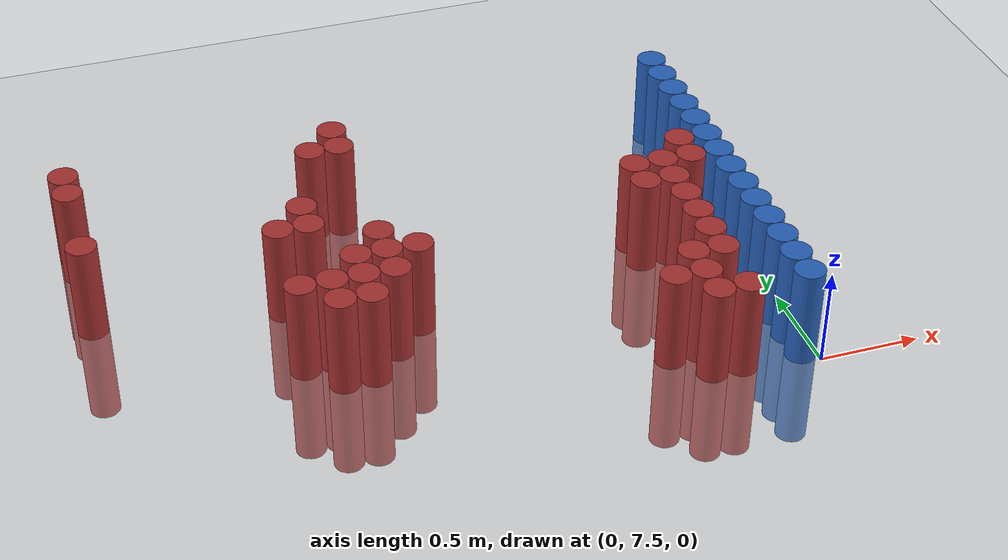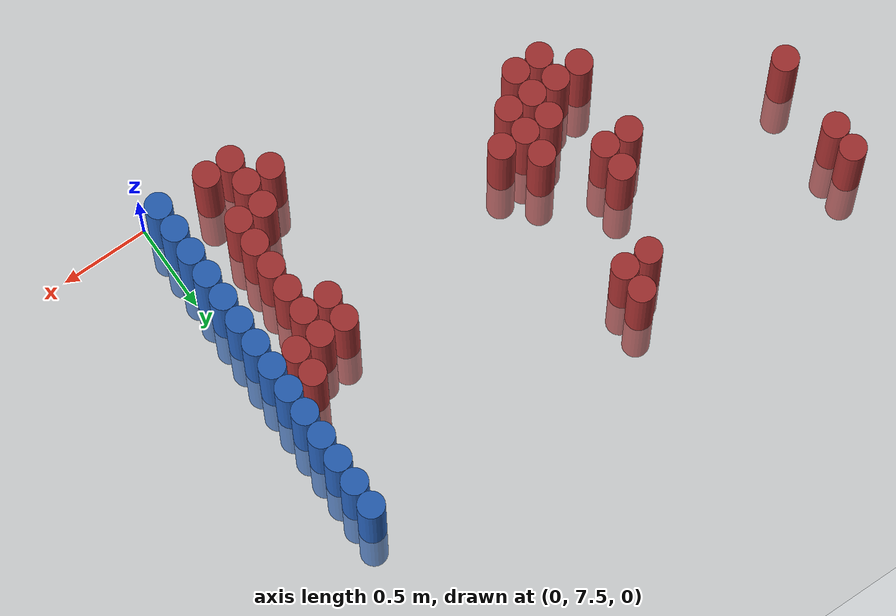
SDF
<sdf version="1.6">
 <world name="default">
  <model name="ground_plane">
   <static>1</static>
   <link name="link">
    <collision name="collision">
     <geometry><plane><normal>0 0 1</normal><size>100 100</size></plane></geometry>
     <surface><friction><ode><mu>100</mu><mu2>50</mu2></ode></friction></surface>
    </collision>
    <visual name="visual">
     <cast_shadows>0</cast_shadows>
     <geometry><plane><normal>0 0 1</normal><size>100 100</size></plane></geometry>
     <material>
      <script><uri>file://media/materials/scripts/gazebo.material</uri><name>Gazebo/Grey</name></script>
     </material>
    </visual>
   </link>
  </model>
  <model name="unit_cylinder_155">
   <static>1</static>
   <pose>-3.225000 8.775000 0.000000 0.000000 0.000000 0.000000</pose>
   <link name="link">
    <inertial>
     <mass>1</mass>
     <inertia><ixx>0.145833</ixx><ixy>0</ixy><ixz>0</ixz><iyy>0.145833</iyy><iyz>0</iyz><izz>0.125</izz></inertia>
    </inertial>
    <collision name="collision">
     <geometry><cylinder><radius>0.075000</radius><length>1</length></cylinder></geometry>
    </collision>
    <visual name="visual">
     <geometry><cylinder><radius>0.075000</radius><length>1</length></cylinder></geometry>
     <material>
      <ambient>0.648000 0.192000 0.192000 1</ambient>
      <diffuse>0.648000 0.192000 0.192000 1</diffuse>
     </material>
     <material>
      <script><name>Gazebo/Grey</name><uri>file://media/materials/scripts/gazebo.material</uri></script>
     </material>
    </visual>
   </link>
  </model>
  <model name="unit_cylinder_156">
   <static>1</static>
   <pose>-3.225000 9.225000 0.000000 0.000000 0.000000 0.000000</pose>
   <link name="link">
    <inertial>
     <mass>1</mass>
     <inertia><ixx>0.145833</ixx><ixy>0</ixy><ixz>0</ixz><iyy>0.145833</iyy><iyz>0</iyz><izz>0.125</izz></inertia>
    </inertial>
    <collision name="collision">
     <geometry><cylinder><radius>0.075000</radius><length>1</length></cylinder></geometry>
    </collision>
    <visual name="visual">
     <geometry><cylinder><radius>0.075000</radius><length>1</length></cylinder></geometry>
     <material>
      <ambient>0.648000 0.192000 0.192000 1</ambient>
      <diffuse>0.648000 0.192000 0.192000 1</diffuse>
     </material>
     <material>
      <script><name>Gazebo/Grey</name><uri>file://media/materials/scripts/gazebo.material</uri></script>
     </material>
    </visual>
   </link>
  </model>
  <model name="unit_cylinder_157">
   <static>1</static>
   <pose>-3.225000 9.375000 0.000000 0.000000 0.000000 0.000000</pose>
   <link name="link">
    <inertial>
     <mass>1</mass>
     <inertia><ixx>0.145833</ixx><ixy>0</ixy><ixz>0</ixz><iyy>0.145833</iyy><iyz>0</iyz><izz>0.125</izz></inertia>
    </inertial>
    <collision name="collision">
     <geometry><cylinder><radius>0.075000</radius><length>1</length></cylinder></geometry>
    </collision>
    <visual name="visual">
     <geometry><cylinder><radius>0.075000</radius><length>1</length></cylinder></geometry>
     <material>
      <ambient>0.648000 0.192000 0.192000 1</ambient>
      <diffuse>0.648000 0.192000 0.192000 1</diffuse>
     </material>
     <material>
      <script><name>Gazebo/Grey</name><uri>file://media/materials/scripts/gazebo.material</uri></script>
     </material>
    </visual>
   </link>
  </model>
  <model name="unit_cylinder_181">
   <static>1</static>
   <pose>-2.325000 8.175000 0.000000 0.000000 0.000000 0.000000</pose>
   <link name="link">
    <inertial>
     <mass>1</mass>
     <inertia><ixx>0.145833</ixx><ixy>0</ixy><ixz>0</ixz><iyy>0.145833</iyy><iyz>0</iyz><izz>0.125</izz></inertia>
    </inertial>
    <collision name="collision">
     <geometry><cylinder><radius>0.075000</radius><length>1</length></cylinder></geometry>
    </collision>
    <visual name="visual">
     <geometry><cylinder><radius>0.075000</radius><length>1</length></cylinder></geometry>
     <material>
      <ambient>0.648000 0.192000 0.192000 1</ambient>
      <diffuse>0.648000 0.192000 0.192000 1</diffuse>
     </material>
     <material>
      <script><name>Gazebo/Grey</name><uri>file://media/materials/scripts/gazebo.material</uri></script>
     </material>
    </visual>
   </link>
  </model>
  <model name="unit_cylinder_182">
   <static>1</static>
   <pose>-2.325000 8.625000 0.000000 0.000000 0.000000 0.000000</pose>
   <link name="link">
    <inertial>
     <mass>1</mass>
     <inertia><ixx>0.145833</ixx><ixy>0</ixy><ixz>0</ixz><iyy>0.145833</iyy><iyz>0</iyz><izz>0.125</izz></inertia>
    </inertial>
    <collision name="collision">
     <geometry><cylinder><radius>0.075000</radius><length>1</length></cylinder></geometry>
    </collision>
    <visual name="visual">
     <geometry><cylinder><radius>0.075000</radius><length>1</length></cylinder></geometry>
     <material>
      <ambient>0.648000 0.192000 0.192000 1</ambient>
      <diffuse>0.648000 0.192000 0.192000 1</diffuse>
     </material>
     <material>
      <script><name>Gazebo/Grey</name><uri>file://media/materials/scripts/gazebo.material</uri></script>
     </material>
    </visual>
   </link>
  </model>
  <model name="unit_cylinder_185">
   <static>1</static>
   <pose>-2.175000 8.025000 0.000000 0.000000 0.000000 0.000000</pose>
   <link name="link">
    <inertial>
     <mass>1</mass>
     <inertia><ixx>0.145833</ixx><ixy>0</ixy><ixz>0</ixz><iyy>0.145833</iyy><iyz>0</iyz><izz>0.125</izz></inertia>
    </inertial>
    <collision name="collision">
     <geometry><cylinder><radius>0.075000</radius><length>1</length></cylinder></geometry>
    </collision>
    <visual name="visual">
     <geometry><cylinder><radius>0.075000</radius><length>1</length></cylinder></geometry>
     <material>
      <ambient>0.648000 0.192000 0.192000 1</ambient>
      <diffuse>0.648000 0.192000 0.192000 1</diffuse>
     </material>
     <material>
      <script><name>Gazebo/Grey</name><uri>file://media/materials/scripts/gazebo.material</uri></script>
     </material>
    </visual>
   </link>
  </model>
  <model name="unit_cylinder_186">
   <static>1</static>
   <pose>-2.175000 8.175000 0.000000 0.000000 0.000000 0.000000</pose>
   <link name="link">
    <inertial>
     <mass>1</mass>
     <inertia><ixx>0.145833</ixx><ixy>0</ixy><ixz>0</ixz><iyy>0.145833</iyy><iyz>0</iyz><izz>0.125</izz></inertia>
    </inertial>
    <collision name="collision">
     <geometry><cylinder><radius>0.075000</radius><length>1</length></cylinder></geometry>
    </collision>
    <visual name="visual">
     <geometry><cylinder><radius>0.075000</radius><length>1</length></cylinder></geometry>
     <material>
      <ambient>0.648000 0.192000 0.192000 1</ambient>
      <diffuse>0.648000 0.192000 0.192000 1</diffuse>
     </material>
     <material>
      <script><name>Gazebo/Grey</name><uri>file://media/materials/scripts/gazebo.material</uri></script>
     </material>
    </visual>
   </link>
  </model>
  <model name="unit_cylinder_187">
   <static>1</static>
   <pose>-2.175000 8.625000 0.000000 0.000000 0.000000 0.000000</pose>
   <link name="link">
    <inertial>
     <mass>1</mass>
     <inertia><ixx>0.145833</ixx><ixy>0</ixy><ixz>0</ixz><iyy>0.145833</iyy><iyz>0</iyz><izz>0.125</izz></inertia>
    </inertial>
    <collision name="collision">
     <geometry><cylinder><radius>0.075000</radius><length>1</length></cylinder></geometry>
    </collision>
    <visual name="visual">
     <geometry><cylinder><radius>0.075000</radius><length>1</length></cylinder></geometry>
     <material>
      <ambient>0.648000 0.192000 0.192000 1</ambient>
      <diffuse>0.648000 0.192000 0.192000 1</diffuse>
     </material>
     <material>
      <script><name>Gazebo/Grey</name><uri>file://media/materials/scripts/gazebo.material</uri></script>
     </material>
    </visual>
   </link>
  </model>
  <model name="unit_cylinder_188">
   <static>1</static>
   <pose>-2.175000 8.775000 0.000000 0.000000 0.000000 0.000000</pose>
   <link name="link">
    <inertial>
     <mass>1</mass>
     <inertia><ixx>0.145833</ixx><ixy>0</ixy><ixz>0</ixz><iyy>0.145833</iyy><iyz>0</iyz><izz>0.125</izz></inertia>
    </inertial>
    <collision name="collision">
     <geometry><cylinder><radius>0.075000</radius><length>1</length></cylinder></geometry>
    </collision>
    <visual name="visual">
     <geometry><cylinder><radius>0.075000</radius><length>1</length></cylinder></geometry>
     <material>
      <ambient>0.648000 0.192000 0.192000 1</ambient>
      <diffuse>0.648000 0.192000 0.192000 1</diffuse>
     </material>
     <material>
      <script><name>Gazebo/Grey</name><uri>file://media/materials/scripts/gazebo.material</uri></script>
     </material>
    </visual>
   </link>
  </model>
  <model name="unit_cylinder_189">
   <static>1</static>
   <pose>-2.025000 8.025000 0.000000 0.000000 0.000000 0.000000</pose>
   <link name="link">
    <inertial>
     <mass>1</mass>
     <inertia><ixx>0.145833</ixx><ixy>0</ixy><ixz>0</ixz><iyy>0.145833</iyy><iyz>0</iyz><izz>0.125</izz></inertia>
    </inertial>
    <collision name="collision">
     <geometry><cylinder><radius>0.075000</radius><length>1</length></cylinder></geometry>
    </collision>
    <visual name="visual">
     <geometry><cylinder><radius>0.075000</radius><length>1</length></cylinder></geometry>
     <material>
      <ambient>0.648000 0.192000 0.192000 1</ambient>
      <diffuse>0.648000 0.192000 0.192000 1</diffuse>
     </material>
     <material>
      <script><name>Gazebo/Grey</name><uri>file://media/materials/scripts/gazebo.material</uri></script>
     </material>
    </visual>
   </link>
  </model>
  <model name="unit_cylinder_190">
   <static>1</static>
   <pose>-2.025000 8.175000 0.000000 0.000000 0.000000 0.000000</pose>
   <link name="link">
    <inertial>
     <mass>1</mass>
     <inertia><ixx>0.145833</ixx><ixy>0</ixy><ixz>0</ixz><iyy>0.145833</iyy><iyz>0</iyz><izz>0.125</izz></inertia>
    </inertial>
    <collision name="collision">
     <geometry><cylinder><radius>0.075000</radius><length>1</length></cylinder></geometry>
    </collision>
    <visual name="visual">
     <geometry><cylinder><radius>0.075000</radius><length>1</length></cylinder></geometry>
     <material>
      <ambient>0.648000 0.192000 0.192000 1</ambient>
      <diffuse>0.648000 0.192000 0.192000 1</diffuse>
     </material>
     <material>
      <script><name>Gazebo/Grey</name><uri>file://media/materials/scripts/gazebo.material</uri></script>
     </material>
    </visual>
   </link>
  </model>
  <model name="unit_cylinder_191">
   <static>1</static>
   <pose>-2.025000 8.325000 0.000000 0.000000 0.000000 0.000000</pose>
   <link name="link">
    <inertial>
     <mass>1</mass>
     <inertia><ixx>0.145833</ixx><ixy>0</ixy><ixz>0</ixz><iyy>0.145833</iyy><iyz>0</iyz><izz>0.125</izz></inertia>
    </inertial>
    <collision name="collision">
     <geometry><cylinder><radius>0.075000</radius><length>1</length></cylinder></geometry>
    </collision>
    <visual name="visual">
     <geometry><cylinder><radius>0.075000</radius><length>1</length></cylinder></geometry>
     <material>
      <ambient>0.648000 0.192000 0.192000 1</ambient>
      <diffuse>0.648000 0.192000 0.192000 1</diffuse>
     </material>
     <material>
      <script><name>Gazebo/Grey</name><uri>file://media/materials/scripts/gazebo.material</uri></script>
     </material>
    </visual>
   </link>
  </model>
  <model name="unit_cylinder_192">
   <static>1</static>
   <pose>-2.025000 9.225000 0.000000 0.000000 0.000000 0.000000</pose>
   <link name="link">
    <inertial>
     <mass>1</mass>
     <inertia><ixx>0.145833</ixx><ixy>0</ixy><ixz>0</ixz><iyy>0.145833</iyy><iyz>0</iyz><izz>0.125</izz></inertia>
    </inertial>
    <collision name="collision">
     <geometry><cylinder><radius>0.075000</radius><length>1</length></cylinder></geometry>
    </collision>
    <visual name="visual">
     <geometry><cylinder><radius>0.075000</radius><length>1</length></cylinder></geometry>
     <material>
      <ambient>0.648000 0.192000 0.192000 1</ambient>
      <diffuse>0.648000 0.192000 0.192000 1</diffuse>
     </material>
     <material>
      <script><name>Gazebo/Grey</name><uri>file://media/materials/scripts/gazebo.material</uri></script>
     </material>
    </visual>
   </link>
  </model>
  <model name="unit_cylinder_193">
   <static>1</static>
   <pose>-1.875000 8.175000 0.000000 0.000000 0.000000 0.000000</pose>
   <link name="link">
    <inertial>
     <mass>1</mass>
     <inertia><ixx>0.145833</ixx><ixy>0</ixy><ixz>0</ixz><iyy>0.145833</iyy><iyz>0</iyz><izz>0.125</izz></inertia>
    </inertial>
    <collision name="collision">
     <geometry><cylinder><radius>0.075000</radius><length>1</length></cylinder></geometry>
    </collision>
    <visual name="visual">
     <geometry><cylinder><radius>0.075000</radius><length>1</length></cylinder></geometry>
     <material>
      <ambient>0.648000 0.192000 0.192000 1</ambient>
      <diffuse>0.648000 0.192000 0.192000 1</diffuse>
     </material>
     <material>
      <script><name>Gazebo/Grey</name><uri>file://media/materials/scripts/gazebo.material</uri></script>
     </material>
    </visual>
   </link>
  </model>
  <model name="unit_cylinder_194">
   <static>1</static>
   <pose>-1.875000 8.325000 0.000000 0.000000 0.000000 0.000000</pose>
   <link name="link">
    <inertial>
     <mass>1</mass>
     <inertia><ixx>0.145833</ixx><ixy>0</ixy><ixz>0</ixz><iyy>0.145833</iyy><iyz>0</iyz><izz>0.125</izz></inertia>
    </inertial>
    <collision name="collision">
     <geometry><cylinder><radius>0.075000</radius><length>1</length></cylinder></geometry>
    </collision>
    <visual name="visual">
     <geometry><cylinder><radius>0.075000</radius><length>1</length></cylinder></geometry>
     <material>
      <ambient>0.648000 0.192000 0.192000 1</ambient>
      <diffuse>0.648000 0.192000 0.192000 1</diffuse>
     </material>
     <material>
      <script><name>Gazebo/Grey</name><uri>file://media/materials/scripts/gazebo.material</uri></script>
     </material>
    </visual>
   </link>
  </model>
  <model name="unit_cylinder_195">
   <static>1</static>
   <pose>-1.875000 8.475000 0.000000 0.000000 0.000000 0.000000</pose>
   <link name="link">
    <inertial>
     <mass>1</mass>
     <inertia><ixx>0.145833</ixx><ixy>0</ixy><ixz>0</ixz><iyy>0.145833</iyy><iyz>0</iyz><izz>0.125</izz></inertia>
    </inertial>
    <collision name="collision">
     <geometry><cylinder><radius>0.075000</radius><length>1</length></cylinder></geometry>
    </collision>
    <visual name="visual">
     <geometry><cylinder><radius>0.075000</radius><length>1</length></cylinder></geometry>
     <material>
      <ambient>0.648000 0.192000 0.192000 1</ambient>
      <diffuse>0.648000 0.192000 0.192000 1</diffuse>
     </material>
     <material>
      <script><name>Gazebo/Grey</name><uri>file://media/materials/scripts/gazebo.material</uri></script>
     </material>
    </visual>
   </link>
  </model>
  <model name="unit_cylinder_196">
   <static>1</static>
   <pose>-1.875000 9.225000 0.000000 0.000000 0.000000 0.000000</pose>
   <link name="link">
    <inertial>
     <mass>1</mass>
     <inertia><ixx>0.145833</ixx><ixy>0</ixy><ixz>0</ixz><iyy>0.145833</iyy><iyz>0</iyz><izz>0.125</izz></inertia>
    </inertial>
    <collision name="collision">
     <geometry><cylinder><radius>0.075000</radius><length>1</length></cylinder></geometry>
    </collision>
    <visual name="visual">
     <geometry><cylinder><radius>0.075000</radius><length>1</length></cylinder></geometry>
     <material>
      <ambient>0.648000 0.192000 0.192000 1</ambient>
      <diffuse>0.648000 0.192000 0.192000 1</diffuse>
     </material>
     <material>
      <script><name>Gazebo/Grey</name><uri>file://media/materials/scripts/gazebo.material</uri></script>
     </material>
    </visual>
   </link>
  </model>
  <model name="unit_cylinder_197">
   <static>1</static>
   <pose>-1.875000 9.375000 0.000000 0.000000 0.000000 0.000000</pose>
   <link name="link">
    <inertial>
     <mass>1</mass>
     <inertia><ixx>0.145833</ixx><ixy>0</ixy><ixz>0</ixz><iyy>0.145833</iyy><iyz>0</iyz><izz>0.125</izz></inertia>
    </inertial>
    <collision name="collision">
     <geometry><cylinder><radius>0.075000</radius><length>1</length></cylinder></geometry>
    </collision>
    <visual name="visual">
     <geometry><cylinder><radius>0.075000</radius><length>1</length></cylinder></geometry>
     <material>
      <ambient>0.648000 0.192000 0.192000 1</ambient>
      <diffuse>0.648000 0.192000 0.192000 1</diffuse>
     </material>
     <material>
      <script><name>Gazebo/Grey</name><uri>file://media/materials/scripts/gazebo.material</uri></script>
     </material>
    </visual>
   </link>
  </model>
  <model name="unit_cylinder_201">
   <static>1</static>
   <pose>-1.725000 8.325000 0.000000 0.000000 0.000000 0.000000</pose>
   <link name="link">
    <inertial>
     <mass>1</mass>
     <inertia><ixx>0.145833</ixx><ixy>0</ixy><ixz>0</ixz><iyy>0.145833</iyy><iyz>0</iyz><izz>0.125</izz></inertia>
    </inertial>
    <collision name="collision">
     <geometry><cylinder><radius>0.075000</radius><length>1</length></cylinder></geometry>
    </collision>
    <visual name="visual">
     <geometry><cylinder><radius>0.075000</radius><length>1</length></cylinder></geometry>
     <material>
      <ambient>0.648000 0.192000 0.192000 1</ambient>
      <diffuse>0.648000 0.192000 0.192000 1</diffuse>
     </material>
     <material>
      <script><name>Gazebo/Grey</name><uri>file://media/materials/scripts/gazebo.material</uri></script>
     </material>
    </visual>
   </link>
  </model>
  <model name="unit_cylinder_219">
   <static>1</static>
   <pose>-0.675000 7.725000 0.000000 0.000000 0.000000 0.000000</pose>
   <link name="link">
    <inertial>
     <mass>1</mass>
     <inertia><ixx>0.145833</ixx><ixy>0</ixy><ixz>0</ixz><iyy>0.145833</iyy><iyz>0</iyz><izz>0.125</izz></inertia>
    </inertial>
    <collision name="collision">
     <geometry><cylinder><radius>0.075000</radius><length>1</length></cylinder></geometry>
    </collision>
    <visual name="visual">
     <geometry><cylinder><radius>0.075000</radius><length>1</length></cylinder></geometry>
     <material>
      <ambient>0.648000 0.192000 0.192000 1</ambient>
      <diffuse>0.648000 0.192000 0.192000 1</diffuse>
     </material>
     <material>
      <script><name>Gazebo/Grey</name><uri>file://media/materials/scripts/gazebo.material</uri></script>
     </material>
    </visual>
   </link>
  </model>
  <model name="unit_cylinder_224">
   <static>1</static>
   <pose>-0.525000 7.575000 0.000000 0.000000 0.000000 0.000000</pose>
   <link name="link">
    <inertial>
     <mass>1</mass>
     <inertia><ixx>0.145833</ixx><ixy>0</ixy><ixz>0</ixz><iyy>0.145833</iyy><iyz>0</iyz><izz>0.125</izz></inertia>
    </inertial>
    <collision name="collision">
     <geometry><cylinder><radius>0.075000</radius><length>1</length></cylinder></geometry>
    </collision>
    <visual name="visual">
     <geometry><cylinder><radius>0.075000</radius><length>1</length></cylinder></geometry>
     <material>
      <ambient>0.648000 0.192000 0.192000 1</ambient>
      <diffuse>0.648000 0.192000 0.192000 1</diffuse>
     </material>
     <material>
      <script><name>Gazebo/Grey</name><uri>file://media/materials/scripts/gazebo.material</uri></script>
     </material>
    </visual>
   </link>
  </model>
  <model name="unit_cylinder_225">
   <static>1</static>
   <pose>-0.525000 7.725000 0.000000 0.000000 0.000000 0.000000</pose>
   <link name="link">
    <inertial>
     <mass>1</mass>
     <inertia><ixx>0.145833</ixx><ixy>0</ixy><ixz>0</ixz><iyy>0.145833</iyy><iyz>0</iyz><izz>0.125</izz></inertia>
    </inertial>
    <collision name="collision">
     <geometry><cylinder><radius>0.075000</radius><length>1</length></cylinder></geometry>
    </collision>
    <visual name="visual">
     <geometry><cylinder><radius>0.075000</radius><length>1</length></cylinder></geometry>
     <material>
      <ambient>0.648000 0.192000 0.192000 1</ambient>
      <diffuse>0.648000 0.192000 0.192000 1</diffuse>
     </material>
     <material>
      <script><name>Gazebo/Grey</name><uri>file://media/materials/scripts/gazebo.material</uri></script>
     </material>
    </visual>
   </link>
  </model>
  <model name="unit_cylinder_226">
   <static>1</static>
   <pose>-0.525000 7.875000 0.000000 0.000000 0.000000 0.000000</pose>
   <link name="link">
    <inertial>
     <mass>1</mass>
     <inertia><ixx>0.145833</ixx><ixy>0</ixy><ixz>0</ixz><iyy>0.145833</iyy><iyz>0</iyz><izz>0.125</izz></inertia>
    </inertial>
    <collision name="collision">
     <geometry><cylinder><radius>0.075000</radius><length>1</length></cylinder></geometry>
    </collision>
    <visual name="visual">
     <geometry><cylinder><radius>0.075000</radius><length>1</length></cylinder></geometry>
     <material>
      <ambient>0.648000 0.192000 0.192000 1</ambient>
      <diffuse>0.648000 0.192000 0.192000 1</diffuse>
     </material>
     <material>
      <script><name>Gazebo/Grey</name><uri>file://media/materials/scripts/gazebo.material</uri></script>
     </material>
    </visual>
   </link>
  </model>
  <model name="unit_cylinder_227">
   <static>1</static>
   <pose>-0.525000 8.475000 0.000000 0.000000 0.000000 0.000000</pose>
   <link name="link">
    <inertial>
     <mass>1</mass>
     <inertia><ixx>0.145833</ixx><ixy>0</ixy><ixz>0</ixz><iyy>0.145833</iyy><iyz>0</iyz><izz>0.125</izz></inertia>
    </inertial>
    <collision name="collision">
     <geometry><cylinder><radius>0.075000</radius><length>1</length></cylinder></geometry>
    </collision>
    <visual name="visual">
     <geometry><cylinder><radius>0.075000</radius><length>1</length></cylinder></geometry>
     <material>
      <ambient>0.648000 0.192000 0.192000 1</ambient>
      <diffuse>0.648000 0.192000 0.192000 1</diffuse>
     </material>
     <material>
      <script><name>Gazebo/Grey</name><uri>file://media/materials/scripts/gazebo.material</uri></script>
     </material>
    </visual>
   </link>
  </model>
  <model name="unit_cylinder_228">
   <static>1</static>
   <pose>-0.525000 8.625000 0.000000 0.000000 0.000000 0.000000</pose>
   <link name="link">
    <inertial>
     <mass>1</mass>
     <inertia><ixx>0.145833</ixx><ixy>0</ixy><ixz>0</ixz><iyy>0.145833</iyy><iyz>0</iyz><izz>0.125</izz></inertia>
    </inertial>
    <collision name="collision">
     <geometry><cylinder><radius>0.075000</radius><length>1</length></cylinder></geometry>
    </collision>
    <visual name="visual">
     <geometry><cylinder><radius>0.075000</radius><length>1</length></cylinder></geometry>
     <material>
      <ambient>0.648000 0.192000 0.192000 1</ambient>
      <diffuse>0.648000 0.192000 0.192000 1</diffuse>
     </material>
     <material>
      <script><name>Gazebo/Grey</name><uri>file://media/materials/scripts/gazebo.material</uri></script>
     </material>
    </visual>
   </link>
  </model>
  <model name="unit_cylinder_235">
   <static>1</static>
   <pose>-0.375000 7.575000 0.000000 0.000000 0.000000 0.000000</pose>
   <link name="link">
    <inertial>
     <mass>1</mass>
     <inertia><ixx>0.145833</ixx><ixy>0</ixy><ixz>0</ixz><iyy>0.145833</iyy><iyz>0</iyz><izz>0.125</izz></inertia>
    </inertial>
    <collision name="collision">
     <geometry><cylinder><radius>0.075000</radius><length>1</length></cylinder></geometry>
    </collision>
    <visual name="visual">
     <geometry><cylinder><radius>0.075000</radius><length>1</length></cylinder></geometry>
     <material>
      <ambient>0.648000 0.192000 0.192000 1</ambient>
      <diffuse>0.648000 0.192000 0.192000 1</diffuse>
     </material>
     <material>
      <script><name>Gazebo/Grey</name><uri>file://media/materials/scripts/gazebo.material</uri></script>
     </material>
    </visual>
   </link>
  </model>
  <model name="unit_cylinder_236">
   <static>1</static>
   <pose>-0.375000 7.875000 0.000000 0.000000 0.000000 0.000000</pose>
   <link name="link">
    <inertial>
     <mass>1</mass>
     <inertia><ixx>0.145833</ixx><ixy>0</ixy><ixz>0</ixz><iyy>0.145833</iyy><iyz>0</iyz><izz>0.125</izz></inertia>
    </inertial>
    <collision name="collision">
     <geometry><cylinder><radius>0.075000</radius><length>1</length></cylinder></geometry>
    </collision>
    <visual name="visual">
     <geometry><cylinder><radius>0.075000</radius><length>1</length></cylinder></geometry>
     <material>
      <ambient>0.648000 0.192000 0.192000 1</ambient>
      <diffuse>0.648000 0.192000 0.192000 1</diffuse>
     </material>
     <material>
      <script><name>Gazebo/Grey</name><uri>file://media/materials/scripts/gazebo.material</uri></script>
     </material>
    </visual>
   </link>
  </model>
  <model name="unit_cylinder_237">
   <static>1</static>
   <pose>-0.375000 8.025000 0.000000 0.000000 0.000000 0.000000</pose>
   <link name="link">
    <inertial>
     <mass>1</mass>
     <inertia><ixx>0.145833</ixx><ixy>0</ixy><ixz>0</ixz><iyy>0.145833</iyy><iyz>0</iyz><izz>0.125</izz></inertia>
    </inertial>
    <collision name="collision">
     <geometry><cylinder><radius>0.075000</radius><length>1</length></cylinder></geometry>
    </collision>
    <visual name="visual">
     <geometry><cylinder><radius>0.075000</radius><length>1</length></cylinder></geometry>
     <material>
      <ambient>0.648000 0.192000 0.192000 1</ambient>
      <diffuse>0.648000 0.192000 0.192000 1</diffuse>
     </material>
     <material>
      <script><name>Gazebo/Grey</name><uri>file://media/materials/scripts/gazebo.material</uri></script>
     </material>
    </visual>
   </link>
  </model>
  <model name="unit_cylinder_238">
   <static>1</static>
   <pose>-0.375000 8.175000 0.000000 0.000000 0.000000 0.000000</pose>
   <link name="link">
    <inertial>
     <mass>1</mass>
     <inertia><ixx>0.145833</ixx><ixy>0</ixy><ixz>0</ixz><iyy>0.145833</iyy><iyz>0</iyz><izz>0.125</izz></inertia>
    </inertial>
    <collision name="collision">
     <geometry><cylinder><radius>0.075000</radius><length>1</length></cylinder></geometry>
    </collision>
    <visual name="visual">
     <geometry><cylinder><radius>0.075000</radius><length>1</length></cylinder></geometry>
     <material>
      <ambient>0.648000 0.192000 0.192000 1</ambient>
      <diffuse>0.648000 0.192000 0.192000 1</diffuse>
     </material>
     <material>
      <script><name>Gazebo/Grey</name><uri>file://media/materials/scripts/gazebo.material</uri></script>
     </material>
    </visual>
   </link>
  </model>
  <model name="unit_cylinder_239">
   <static>1</static>
   <pose>-0.375000 8.325000 0.000000 0.000000 0.000000 0.000000</pose>
   <link name="link">
    <inertial>
     <mass>1</mass>
     <inertia><ixx>0.145833</ixx><ixy>0</ixy><ixz>0</ixz><iyy>0.145833</iyy><iyz>0</iyz><izz>0.125</izz></inertia>
    </inertial>
    <collision name="collision">
     <geometry><cylinder><radius>0.075000</radius><length>1</length></cylinder></geometry>
    </collision>
    <visual name="visual">
     <geometry><cylinder><radius>0.075000</radius><length>1</length></cylinder></geometry>
     <material>
      <ambient>0.648000 0.192000 0.192000 1</ambient>
      <diffuse>0.648000 0.192000 0.192000 1</diffuse>
     </material>
     <material>
      <script><name>Gazebo/Grey</name><uri>file://media/materials/scripts/gazebo.material</uri></script>
     </material>
    </visual>
   </link>
  </model>
  <model name="unit_cylinder_240">
   <static>1</static>
   <pose>-0.375000 8.475000 0.000000 0.000000 0.000000 0.000000</pose>
   <link name="link">
    <inertial>
     <mass>1</mass>
     <inertia><ixx>0.145833</ixx><ixy>0</ixy><ixz>0</ixz><iyy>0.145833</iyy><iyz>0</iyz><izz>0.125</izz></inertia>
    </inertial>
    <collision name="collision">
     <geometry><cylinder><radius>0.075000</radius><length>1</length></cylinder></geometry>
    </collision>
    <visual name="visual">
     <geometry><cylinder><radius>0.075000</radius><length>1</length></cylinder></geometry>
     <material>
      <ambient>0.648000 0.192000 0.192000 1</ambient>
      <diffuse>0.648000 0.192000 0.192000 1</diffuse>
     </material>
     <material>
      <script><name>Gazebo/Grey</name><uri>file://media/materials/scripts/gazebo.material</uri></script>
     </material>
    </visual>
   </link>
  </model>
  <model name="unit_cylinder_241">
   <static>1</static>
   <pose>-0.375000 8.625000 0.000000 0.000000 0.000000 0.000000</pose>
   <link name="link">
    <inertial>
     <mass>1</mass>
     <inertia><ixx>0.145833</ixx><ixy>0</ixy><ixz>0</ixz><iyy>0.145833</iyy><iyz>0</iyz><izz>0.125</izz></inertia>
    </inertial>
    <collision name="collision">
     <geometry><cylinder><radius>0.075000</radius><length>1</length></cylinder></geometry>
    </collision>
    <visual name="visual">
     <geometry><cylinder><radius>0.075000</radius><length>1</length></cylinder></geometry>
     <material>
      <ambient>0.648000 0.192000 0.192000 1</ambient>
      <diffuse>0.648000 0.192000 0.192000 1</diffuse>
     </material>
     <material>
      <script><name>Gazebo/Grey</name><uri>file://media/materials/scripts/gazebo.material</uri></script>
     </material>
    </visual>
   </link>
  </model>
  <model name="unit_cylinder_254">
   <static>1</static>
   <pose>-0.225000 8.625000 0.000000 0.000000 0.000000 0.000000</pose>
   <link name="link">
    <inertial>
     <mass>1</mass>
     <inertia><ixx>0.145833</ixx><ixy>0</ixy><ixz>0</ixz><iyy>0.145833</iyy><iyz>0</iyz><izz>0.125</izz></inertia>
    </inertial>
    <collision name="collision">
     <geometry><cylinder><radius>0.075000</radius><length>1</length></cylinder></geometry>
    </collision>
    <visual name="visual">
     <geometry><cylinder><radius>0.075000</radius><length>1</length></cylinder></geometry>
     <material>
      <ambient>0.648000 0.192000 0.192000 1</ambient>
      <diffuse>0.648000 0.192000 0.192000 1</diffuse>
     </material>
     <material>
      <script><name>Gazebo/Grey</name><uri>file://media/materials/scripts/gazebo.material</uri></script>
     </material>
    </visual>
   </link>
  </model>
  <model name="unit_cylinder_255">
   <static>1</static>
   <pose>-0.225000 8.775000 0.000000 0.000000 0.000000 0.000000</pose>
   <link name="link">
    <inertial>
     <mass>1</mass>
     <inertia><ixx>0.145833</ixx><ixy>0</ixy><ixz>0</ixz><iyy>0.145833</iyy><iyz>0</iyz><izz>0.125</izz></inertia>
    </inertial>
    <collision name="collision">
     <geometry><cylinder><radius>0.075000</radius><length>1</length></cylinder></geometry>
    </collision>
    <visual name="visual">
     <geometry><cylinder><radius>0.075000</radius><length>1</length></cylinder></geometry>
     <material>
      <ambient>0.648000 0.192000 0.192000 1</ambient>
      <diffuse>0.648000 0.192000 0.192000 1</diffuse>
     </material>
     <material>
      <script><name>Gazebo/Grey</name><uri>file://media/materials/scripts/gazebo.material</uri></script>
     </material>
    </visual>
   </link>
  </model>
  <model name="unit_cylinder_272">
   <static>1</static>
   <pose>-0.075000 7.575000 0.000000 0.000000 0.000000 0.000000</pose>
   <link name="link">
    <inertial>
     <mass>1</mass>
     <inertia><ixx>0.145833</ixx><ixy>0</ixy><ixz>0</ixz><iyy>0.145833</iyy><iyz>0</iyz><izz>0.125</izz></inertia>
    </inertial>
    <collision name="collision">
     <geometry><cylinder><radius>0.075000</radius><length>1</length></cylinder></geometry>
    </collision>
    <visual name="visual">
     <geometry><cylinder><radius>0.075000</radius><length>1</length></cylinder></geometry>
     <material>
      <ambient>0.152000 0.379000 0.720000 1</ambient>
      <diffuse>0.152000 0.379000 0.720000 1</diffuse>
     </material>
     <material>
      <script><name>Gazebo/Grey</name><uri>file://media/materials/scripts/gazebo.material</uri></script>
     </material>
    </visual>
   </link>
  </model>
  <model name="unit_cylinder_273">
   <static>1</static>
   <pose>-0.075000 7.725000 0.000000 0.000000 0.000000 0.000000</pose>
   <link name="link">
    <inertial>
     <mass>1</mass>
     <inertia><ixx>0.145833</ixx><ixy>0</ixy><ixz>0</ixz><iyy>0.145833</iyy><iyz>0</iyz><izz>0.125</izz></inertia>
    </inertial>
    <collision name="collision">
     <geometry><cylinder><radius>0.075000</radius><length>1</length></cylinder></geometry>
    </collision>
    <visual name="visual">
     <geometry><cylinder><radius>0.075000</radius><length>1</length></cylinder></geometry>
     <material>
      <ambient>0.152000 0.379000 0.720000 1</ambient>
      <diffuse>0.152000 0.379000 0.720000 1</diffuse>
     </material>
     <material>
      <script><name>Gazebo/Grey</name><uri>file://media/materials/scripts/gazebo.material</uri></script>
     </material>
    </visual>
   </link>
  </model>
  <model name="unit_cylinder_274">
   <static>1</static>
   <pose>-0.075000 7.875000 0.000000 0.000000 0.000000 0.000000</pose>
   <link name="link">
    <inertial>
     <mass>1</mass>
     <inertia><ixx>0.145833</ixx><ixy>0</ixy><ixz>0</ixz><iyy>0.145833</iyy><iyz>0</iyz><izz>0.125</izz></inertia>
    </inertial>
    <collision name="collision">
     <geometry><cylinder><radius>0.075000</radius><length>1</length></cylinder></geometry>
    </collision>
    <visual name="visual">
     <geometry><cylinder><radius>0.075000</radius><length>1</length></cylinder></geometry>
     <material>
      <ambient>0.152000 0.379000 0.720000 1</ambient>
      <diffuse>0.152000 0.379000 0.720000 1</diffuse>
     </material>
     <material>
      <script><name>Gazebo/Grey</name><uri>file://media/materials/scripts/gazebo.material</uri></script>
     </material>
    </visual>
   </link>
  </model>
  <model name="unit_cylinder_275">
   <static>1</static>
   <pose>-0.075000 8.025000 0.000000 0.000000 0.000000 0.000000</pose>
   <link name="link">
    <inertial>
     <mass>1</mass>
     <inertia><ixx>0.145833</ixx><ixy>0</ixy><ixz>0</ixz><iyy>0.145833</iyy><iyz>0</iyz><izz>0.125</izz></inertia>
    </inertial>
    <collision name="collision">
     <geometry><cylinder><radius>0.075000</radius><length>1</length></cylinder></geometry>
    </collision>
    <visual name="visual">
     <geometry><cylinder><radius>0.075000</radius><length>1</length></cylinder></geometry>
     <material>
      <ambient>0.152000 0.379000 0.720000 1</ambient>
      <diffuse>0.152000 0.379000 0.720000 1</diffuse>
     </material>
     <material>
      <script><name>Gazebo/Grey</name><uri>file://media/materials/scripts/gazebo.material</uri></script>
     </material>
    </visual>
   </link>
  </model>
  <model name="unit_cylinder_276">
   <static>1</static>
   <pose>-0.075000 8.175000 0.000000 0.000000 0.000000 0.000000</pose>
   <link name="link">
    <inertial>
     <mass>1</mass>
     <inertia><ixx>0.145833</ixx><ixy>0</ixy><ixz>0</ixz><iyy>0.145833</iyy><iyz>0</iyz><izz>0.125</izz></inertia>
    </inertial>
    <collision name="collision">
     <geometry><cylinder><radius>0.075000</radius><length>1</length></cylinder></geometry>
    </collision>
    <visual name="visual">
     <geometry><cylinder><radius>0.075000</radius><length>1</length></cylinder></geometry>
     <material>
      <ambient>0.152000 0.379000 0.720000 1</ambient>
      <diffuse>0.152000 0.379000 0.720000 1</diffuse>
     </material>
     <material>
      <script><name>Gazebo/Grey</name><uri>file://media/materials/scripts/gazebo.material</uri></script>
     </material>
    </visual>
   </link>
  </model>
  <model name="unit_cylinder_277">
   <static>1</static>
   <pose>-0.075000 8.325000 0.000000 0.000000 0.000000 0.000000</pose>
   <link name="link">
    <inertial>
     <mass>1</mass>
     <inertia><ixx>0.145833</ixx><ixy>0</ixy><ixz>0</ixz><iyy>0.145833</iyy><iyz>0</iyz><izz>0.125</izz></inertia>
    </inertial>
    <collision name="collision">
     <geometry><cylinder><radius>0.075000</radius><length>1</length></cylinder></geometry>
    </collision>
    <visual name="visual">
     <geometry><cylinder><radius>0.075000</radius><length>1</length></cylinder></geometry>
     <material>
      <ambient>0.152000 0.379000 0.720000 1</ambient>
      <diffuse>0.152000 0.379000 0.720000 1</diffuse>
     </material>
     <material>
      <script><name>Gazebo/Grey</name><uri>file://media/materials/scripts/gazebo.material</uri></script>
     </material>
    </visual>
   </link>
  </model>
  <model name="unit_cylinder_278">
   <static>1</static>
   <pose>-0.075000 8.475000 0.000000 0.000000 0.000000 0.000000</pose>
   <link name="link">
    <inertial>
     <mass>1</mass>
     <inertia><ixx>0.145833</ixx><ixy>0</ixy><ixz>0</ixz><iyy>0.145833</iyy><iyz>0</iyz><izz>0.125</izz></inertia>
    </inertial>
    <collision name="collision">
     <geometry><cylinder><radius>0.075000</radius><length>1</length></cylinder></geometry>
    </collision>
    <visual name="visual">
     <geometry><cylinder><radius>0.075000</radius><length>1</length></cylinder></geometry>
     <material>
      <ambient>0.152000 0.379000 0.720000 1</ambient>
      <diffuse>0.152000 0.379000 0.720000 1</diffuse>
     </material>
     <material>
      <script><name>Gazebo/Grey</name><uri>file://media/materials/scripts/gazebo.material</uri></script>
     </material>
    </visual>
   </link>
  </model>
  <model name="unit_cylinder_279">
   <static>1</static>
   <pose>-0.075000 8.625000 0.000000 0.000000 0.000000 0.000000</pose>
   <link name="link">
    <inertial>
     <mass>1</mass>
     <inertia><ixx>0.145833</ixx><ixy>0</ixy><ixz>0</ixz><iyy>0.145833</iyy><iyz>0</iyz><izz>0.125</izz></inertia>
    </inertial>
    <collision name="collision">
     <geometry><cylinder><radius>0.075000</radius><length>1</length></cylinder></geometry>
    </collision>
    <visual name="visual">
     <geometry><cylinder><radius>0.075000</radius><length>1</length></cylinder></geometry>
     <material>
      <ambient>0.152000 0.379000 0.720000 1</ambient>
      <diffuse>0.152000 0.379000 0.720000 1</diffuse>
     </material>
     <material>
      <script><name>Gazebo/Grey</name><uri>file://media/materials/scripts/gazebo.material</uri></script>
     </material>
    </visual>
   </link>
  </model>
  <model name="unit_cylinder_280">
   <static>1</static>
   <pose>-0.075000 8.775000 0.000000 0.000000 0.000000 0.000000</pose>
   <link name="link">
    <inertial>
     <mass>1</mass>
     <inertia><ixx>0.145833</ixx><ixy>0</ixy><ixz>0</ixz><iyy>0.145833</iyy><iyz>0</iyz><izz>0.125</izz></inertia>
    </inertial>
    <collision name="collision">
     <geometry><cylinder><radius>0.075000</radius><length>1</length></cylinder></geometry>
    </collision>
    <visual name="visual">
     <geometry><cylinder><radius>0.075000</radius><length>1</length></cylinder></geometry>
     <material>
      <ambient>0.152000 0.379000 0.720000 1</ambient>
      <diffuse>0.152000 0.379000 0.720000 1</diffuse>
     </material>
     <material>
      <script><name>Gazebo/Grey</name><uri>file://media/materials/scripts/gazebo.material</uri></script>
     </material>
    </visual>
   </link>
  </model>
  <model name="unit_cylinder_281">
   <static>1</static>
   <pose>-0.075000 8.925000 0.000000 0.000000 0.000000 0.000000</pose>
   <link name="link">
    <inertial>
     <mass>1</mass>
     <inertia><ixx>0.145833</ixx><ixy>0</ixy><ixz>0</ixz><iyy>0.145833</iyy><iyz>0</iyz><izz>0.125</izz></inertia>
    </inertial>
    <collision name="collision">
     <geometry><cylinder><radius>0.075000</radius><length>1</length></cylinder></geometry>
    </collision>
    <visual name="visual">
     <geometry><cylinder><radius>0.075000</radius><length>1</length></cylinder></geometry>
     <material>
      <ambient>0.152000 0.379000 0.720000 1</ambient>
      <diffuse>0.152000 0.379000 0.720000 1</diffuse>
     </material>
     <material>
      <script><name>Gazebo/Grey</name><uri>file://media/materials/scripts/gazebo.material</uri></script>
     </material>
    </visual>
   </link>
  </model>
  <model name="unit_cylinder_282">
   <static>1</static>
   <pose>-0.075000 9.075000 0.000000 0.000000 0.000000 0.000000</pose>
   <link name="link">
    <inertial>
     <mass>1</mass>
     <inertia><ixx>0.145833</ixx><ixy>0</ixy><ixz>0</ixz><iyy>0.145833</iyy><iyz>0</iyz><izz>0.125</izz></inertia>
    </inertial>
    <collision name="collision">
     <geometry><cylinder><radius>0.075000</radius><length>1</length></cylinder></geometry>
    </collision>
    <visual name="visual">
     <geometry><cylinder><radius>0.075000</radius><length>1</length></cylinder></geometry>
     <material>
      <ambient>0.152000 0.379000 0.720000 1</ambient>
      <diffuse>0.152000 0.379000 0.720000 1</diffuse>
     </material>
     <material>
      <script><name>Gazebo/Grey</name><uri>file://media/materials/scripts/gazebo.material</uri></script>
     </material>
    </visual>
   </link>
  </model>
  <model name="unit_cylinder_283">
   <static>1</static>
   <pose>-0.075000 9.225000 0.000000 0.000000 0.000000 0.000000</pose>
   <link name="link">
    <inertial>
     <mass>1</mass>
     <inertia><ixx>0.145833</ixx><ixy>0</ixy><ixz>0</ixz><iyy>0.145833</iyy><iyz>0</iyz><izz>0.125</izz></inertia>
    </inertial>
    <collision name="collision">
     <geometry><cylinder><radius>0.075000</radius><length>1</length></cylinder></geometry>
    </collision>
    <visual name="visual">
     <geometry><cylinder><radius>0.075000</radius><length>1</length></cylinder></geometry>
     <material>
      <ambient>0.152000 0.379000 0.720000 1</ambient>
      <diffuse>0.152000 0.379000 0.720000 1</diffuse>
     </material>
     <material>
      <script><name>Gazebo/Grey</name><uri>file://media/materials/scripts/gazebo.material</uri></script>
     </material>
    </visual>
   </link>
  </model>
  <model name="unit_cylinder_284">
   <static>1</static>
   <pose>-0.075000 9.375000 0.000000 0.000000 0.000000 0.000000</pose>
   <link name="link">
    <inertial>
     <mass>1</mass>
     <inertia><ixx>0.145833</ixx><ixy>0</ixy><ixz>0</ixz><iyy>0.145833</iyy><iyz>0</iyz><izz>0.125</izz></inertia>
    </inertial>
    <collision name="collision">
     <geometry><cylinder><radius>0.075000</radius><length>1</length></cylinder></geometry>
    </collision>
    <visual name="visual">
     <geometry><cylinder><radius>0.075000</radius><length>1</length></cylinder></geometry>
     <material>
      <ambient>0.152000 0.379000 0.720000 1</ambient>
      <diffuse>0.152000 0.379000 0.720000 1</diffuse>
     </material>
     <material>
      <script><name>Gazebo/Grey</name><uri>file://media/materials/scripts/gazebo.material</uri></script>
     </material>
    </visual>
   </link>
  </model>
  <model name="unit_cylinder_285">
   <static>1</static>
   <pose>-0.075000 9.525000 0.000000 0.000000 0.000000 0.000000</pose>
   <link name="link">
    <inertial>
     <mass>1</mass>
     <inertia><ixx>0.145833</ixx><ixy>0</ixy><ixz>0</ixz><iyy>0.145833</iyy><iyz>0</iyz><izz>0.125</izz></inertia>
    </inertial>
    <collision name="collision">
     <geometry><cylinder><radius>0.075000</radius><length>1</length></cylinder></geometry>
    </collision>
    <visual name="visual">
     <geometry><cylinder><radius>0.075000</radius><length>1</length></cylinder></geometry>
     <material>
      <ambient>0.152000 0.379000 0.720000 1</ambient>
      <diffuse>0.152000 0.379000 0.720000 1</diffuse>
     </material>
     <material>
      <script><name>Gazebo/Grey</name><uri>file://media/materials/scripts/gazebo.material</uri></script>
     </material>
    </visual>
   </link>
  </model>
 </world>
</sdf>
